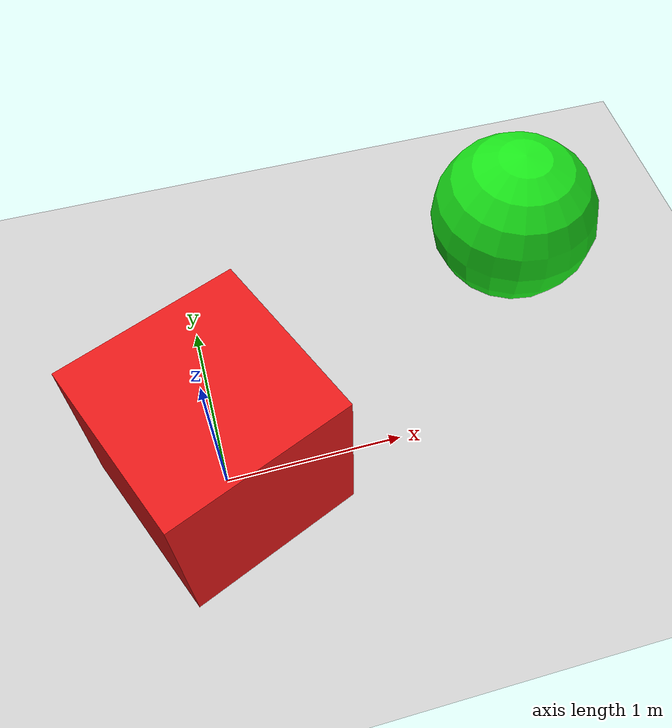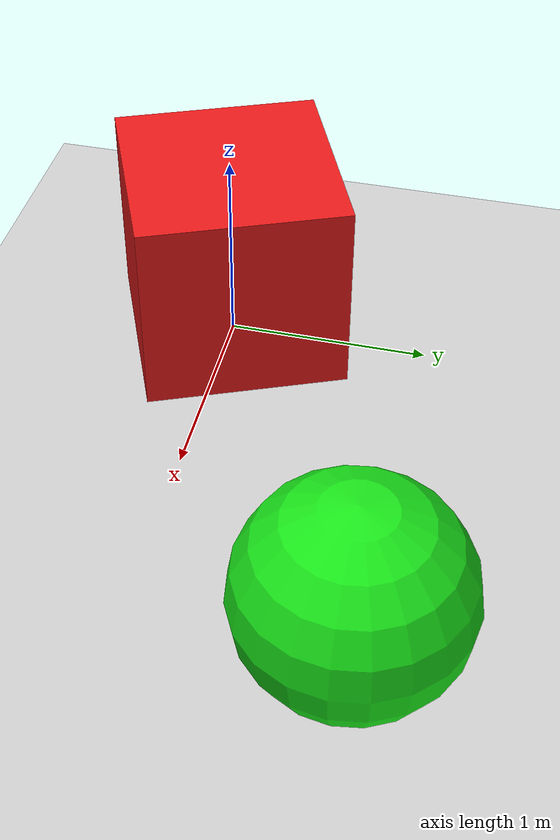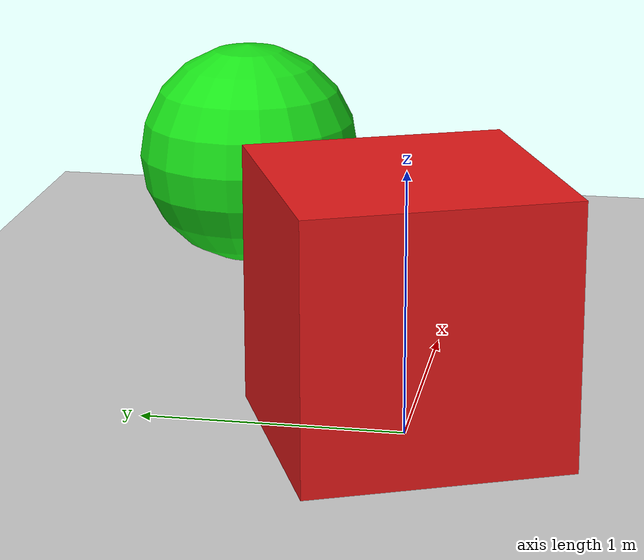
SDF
<?xml version="1.0" ?>
<sdf version="1.9">
  <world name="camtest">
    <plugin filename="gz-sim-physics-system" name="gz::sim::systems::Physics"/>
    <plugin filename="gz-sim-sensors-system" name="gz::sim::systems::Sensors">
      <render_engine>ogre2</render_engine>
    </plugin>
    <plugin filename="gz-sim-scene-broadcaster-system" name="gz::sim::systems::SceneBroadcaster"/>

    <light type="directional" name="sun">
      <cast_shadows>true</cast_shadows>
      <pose>0 0 10 0 0 0</pose>
      <diffuse>0.8 0.8 0.8 1</diffuse>
      <specular>0.2 0.2 0.2 1</specular>
      <direction>-0.5 0.1 -0.9</direction>
    </light>

    <model name="ground_plane">
      <static>true</static>
      <link name="link">
        <collision name="collision">
          <geometry><plane><normal>0 0 1</normal><size>100 100</size></plane></geometry>
        </collision>
        <visual name="visual">
          <geometry><plane><normal>0 0 1</normal><size>100 100</size></plane></geometry>
          <material>
            <ambient>0.8 0.8 0.8 1</ambient>
            <diffuse>0.8 0.8 0.8 1</diffuse>
          </material>
        </visual>
      </link>
    </model>

    <model name="red_box">
      <pose>0 0 0.5 0 0 0.4</pose>
      <link name="link">
        <inertial><mass>1.0</mass>
          <inertia><ixx>0.166</ixx><iyy>0.166</iyy><izz>0.166</izz><ixy>0</ixy><ixz>0</ixz><iyz>0</iyz></inertia>
        </inertial>
        <collision name="collision"><geometry><box><size>1 1 1</size></box></geometry></collision>
        <visual name="visual">
          <geometry><box><size>1 1 1</size></box></geometry>
          <material><ambient>0.8 0.1 0.1 1</ambient><diffuse>0.9 0.1 0.1 1</diffuse><specular>0.5 0.5 0.5 1</specular></material>
        </visual>
      </link>
    </model>

    <model name="green_sphere">
      <pose>2 1 0.5 0 0 0</pose>
      <link name="link">
        <inertial><mass>1.0</mass>
          <inertia><ixx>0.1</ixx><iyy>0.1</iyy><izz>0.1</izz><ixy>0</ixy><ixz>0</ixz><iyz>0</iyz></inertia>
        </inertial>
        <collision name="collision"><geometry><sphere><radius>0.5</radius></sphere></geometry></collision>
        <visual name="visual">
          <geometry><sphere><radius>0.5</radius></sphere></geometry>
          <material><ambient>0.1 0.7 0.1 1</ambient><diffuse>0.1 0.9 0.1 1</diffuse><specular>0.6 0.6 0.6 1</specular></material>
        </visual>
      </link>
    </model>

    <model name="camera_model">
      <static>true</static>
      <pose>-4 -3 2.5 0 0.35 0.65</pose>
      <link name="link">
        <sensor name="camera" type="camera">
          <camera>
            <horizontal_fov>1.2</horizontal_fov>
            <image><width>800</width><height>600</height><format>R8G8B8</format></image>
            <clip><near>0.1</near><far>100</far></clip>
            <save enabled="true"><path>output/camera</path></save>
          </camera>
          <always_on>1</always_on>
          <update_rate>5</update_rate>
          <visualize>true</visualize>
          <topic>camera</topic>
        </sensor>
      </link>
    </model>
  </world>
</sdf>
